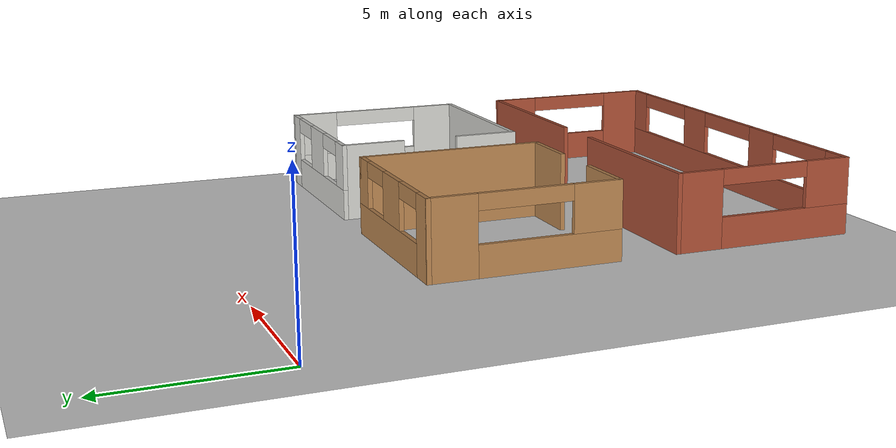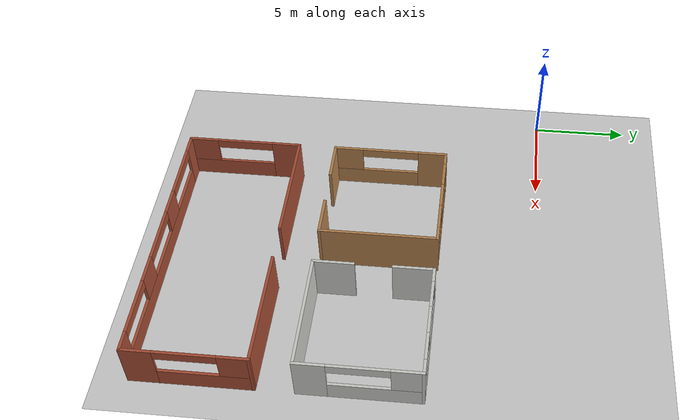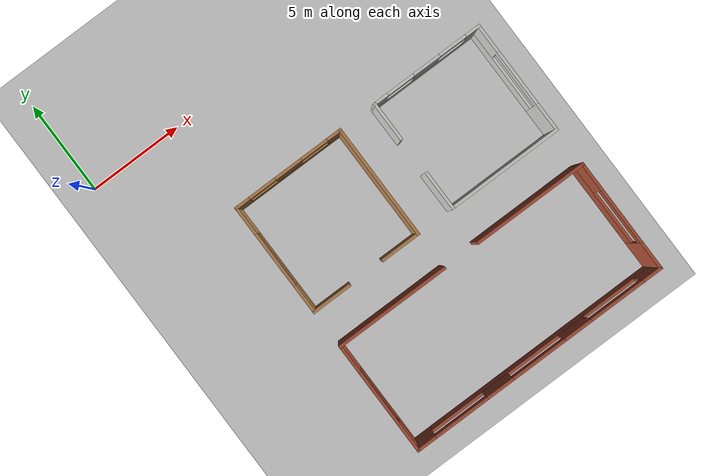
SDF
<sdf version="1.6">
 <world name="default">
  <light name="sun" type="directional">
   <pose>0 0 10 0 -0 0</pose>
   <diffuse>0.8 0.8 0.8 1</diffuse>
   <specular>0.2 0.2 0.2 1</specular>
   <attenuation>
    <range>1000</range>
    <constant>0.9</constant>
    <linear>0.01</linear>
    <quadratic>0.001</quadratic>
   </attenuation>
   <direction>-0.5 0.1 -0.9</direction>
  </light>
  <model name="ground_plane">
   <static>1</static>
   <link name="link">
    <collision name="collision">
     <geometry><plane><normal>0 0 1</normal><size>100 100</size></plane></geometry>
     <surface>
      <contact><collide_bitmask>65535</collide_bitmask></contact>
      <friction><ode><mu>100</mu><mu2>50</mu2></ode></friction>
     </surface>
    </collision>
    <visual name="visual">
     <cast_shadows>0</cast_shadows>
     <geometry><plane><normal>0 0 1</normal><size>100 100</size></plane></geometry>
     <material>
      <script><uri>file://media/materials/scripts/gazebo.material</uri><name>Gazebo/Grey</name></script>
     </material>
    </visual>
   </link>
  </model>
  <gravity>0 0 -9.8</gravity>
  <magnetic_field>6e-06 2.3e-05 -4.2e-05</magnetic_field>
  <atmosphere type="adiabatic"/>
  <physics name="default_physics" default="0" type="ode">
   <max_step_size>0.001</max_step_size>
   <real_time_factor>1</real_time_factor>
   <real_time_update_rate>1000</real_time_update_rate>
  </physics>
  <scene><ambient>0.4 0.4 0.4 1</ambient><background>0.7 0.7 0.7 1</background><shadows>1</shadows></scene>
  <spherical_coordinates>
   <surface_model>EARTH_WGS84</surface_model>
   <latitude_deg>0</latitude_deg>
   <longitude_deg>0</longitude_deg>
   <elevation>0</elevation>
   <heading_deg>0</heading_deg>
  </spherical_coordinates>
  <model name="planning_project_big">
   <pose>12.0748 -12.0654 0 0 -0 0</pose>
   <link name="Wall_0">
    <pose>-4 7 0 0 -0 0</pose>
    <visual name="Wall_0_Visual_0">
     <pose>-2.6625 0 1.25 0 -0 0</pose>
     <geometry><box><size>0.825 0.15 2.5</size></box></geometry>
     <material>
      <script><uri>file://media/materials/scripts/gazebo.material</uri><name>Gazebo/Wood</name></script>
      <ambient>1 1 1 1</ambient>
     </material>
    </visual>
    <collision name="Wall_0_Collision_0">
     <geometry><box><size>0.825 0.15 2.5</size></box></geometry>
     <pose>-2.6625 0 1.25 0 -0 0</pose>
    </collision>
    <visual name="Wall_0_Visual_1">
     <pose>0.4125 0 0.5 0 -0 0</pose>
     <geometry><box><size>5.325 0.15 1</size></box></geometry>
     <material>
      <script><uri>file://media/materials/scripts/gazebo.material</uri><name>Gazebo/Wood</name></script>
      <ambient>1 1 1 1</ambient>
     </material>
    </visual>
    <collision name="Wall_0_Collision_1">
     <geometry><box><size>5.325 0.15 1</size></box></geometry>
     <pose>0.4125 0 0.5 0 -0 0</pose>
    </collision>
    <visual name="Wall_0_Visual_2">
     <pose>0 0 1.75 0 -0 0</pose>
     <geometry><box><size>1.5 0.15 1.5</size></box></geometry>
     <material>
      <script><uri>file://media/materials/scripts/gazebo.material</uri><name>Gazebo/Wood</name></script>
      <ambient>1 1 1 1</ambient>
     </material>
    </visual>
    <collision name="Wall_0_Collision_2">
     <geometry><box><size>1.5 0.15 1.5</size></box></geometry>
     <pose>0 0 1.75 0 -0 0</pose>
    </collision>
    <visual name="Wall_0_Visual_3">
     <pose>2.6625 0 1.75 0 -0 0</pose>
     <geometry><box><size>0.825 0.15 1.5</size></box></geometry>
     <material>
      <script><uri>file://media/materials/scripts/gazebo.material</uri><name>Gazebo/Wood</name></script>
      <ambient>1 1 1 1</ambient>
     </material>
    </visual>
    <collision name="Wall_0_Collision_3">
     <geometry><box><size>0.825 0.15 1.5</size></box></geometry>
     <pose>2.6625 0 1.75 0 -0 0</pose>
    </collision>
    <visual name="Wall_0_Visual_4">
     <pose>-1.5 0 2.25 0 -0 0</pose>
     <geometry><box><size>1.5 0.15 0.5</size></box></geometry>
     <material>
      <script><uri>file://media/materials/scripts/gazebo.material</uri><name>Gazebo/Wood</name></script>
      <ambient>1 1 1 1</ambient>
     </material>
    </visual>
    <collision name="Wall_0_Collision_4">
     <geometry><box><size>1.5 0.15 0.5</size></box></geometry>
     <pose>-1.5 0 2.25 0 -0 0</pose>
    </collision>
    <visual name="Wall_0_Visual_5">
     <pose>1.5 0 2.25 0 -0 0</pose>
     <geometry><box><size>1.5 0.15 0.5</size></box></geometry>
     <material>
      <script><uri>file://media/materials/scripts/gazebo.material</uri><name>Gazebo/Wood</name></script>
      <ambient>1 1 1 1</ambient>
     </material>
    </visual>
    <collision name="Wall_0_Collision_5">
     <geometry><box><size>1.5 0.15 0.5</size></box></geometry>
     <pose>1.5 0 2.25 0 -0 0</pose>
    </collision>
   </link>
   <link name="Wall_1">
    <collision name="Wall_1_Collision">
     <geometry><box><size>6.15 0.15 2.5</size></box></geometry>
     <pose>0 0 1.25 0 -0 0</pose>
    </collision>
    <visual name="Wall_1_Visual">
     <pose>0 0 1.25 0 -0 0</pose>
     <geometry><box><size>6.15 0.15 2.5</size></box></geometry>
     <material>
      <script><uri>file://media/materials/scripts/gazebo.material</uri><name>Gazebo/Wood</name></script>
      <ambient>1 1 1 1</ambient>
     </material>
    </visual>
    <pose>-1 4 0 0 0 -1.5708</pose>
   </link>
   <link name="Wall_10">
    <pose>4 7 0 0 -0 3.14159</pose>
    <visual name="Wall_10_Visual_0">
     <pose>-2.6625 0 1.25 0 -0 0</pose>
     <geometry><box><size>0.825 0.15 2.5</size></box></geometry>
     <material>
      <script><uri>file://media/materials/scripts/gazebo.material</uri><name>Gazebo/CeilingTiled</name></script>
      <ambient>1 1 1 1</ambient>
     </material>
    </visual>
    <collision name="Wall_10_Collision_0">
     <geometry><box><size>0.825 0.15 2.5</size></box></geometry>
     <pose>-2.6625 0 1.25 0 -0 0</pose>
    </collision>
    <visual name="Wall_10_Visual_1">
     <pose>0.4125 0 0.5 0 -0 0</pose>
     <geometry><box><size>5.325 0.15 1</size></box></geometry>
     <material>
      <script><uri>file://media/materials/scripts/gazebo.material</uri><name>Gazebo/CeilingTiled</name></script>
      <ambient>1 1 1 1</ambient>
     </material>
    </visual>
    <collision name="Wall_10_Collision_1">
     <geometry><box><size>5.325 0.15 1</size></box></geometry>
     <pose>0.4125 0 0.5 0 -0 0</pose>
    </collision>
    <visual name="Wall_10_Visual_2">
     <pose>0 0 1.75 0 -0 0</pose>
     <geometry><box><size>1.5 0.15 1.5</size></box></geometry>
     <material>
      <script><uri>file://media/materials/scripts/gazebo.material</uri><name>Gazebo/CeilingTiled</name></script>
      <ambient>1 1 1 1</ambient>
     </material>
    </visual>
    <collision name="Wall_10_Collision_2">
     <geometry><box><size>1.5 0.15 1.5</size></box></geometry>
     <pose>0 0 1.75 0 -0 0</pose>
    </collision>
    <visual name="Wall_10_Visual_3">
     <pose>2.6625 0 1.75 0 -0 0</pose>
     <geometry><box><size>0.825 0.15 1.5</size></box></geometry>
     <material>
      <script><uri>file://media/materials/scripts/gazebo.material</uri><name>Gazebo/CeilingTiled</name></script>
      <ambient>1 1 1 1</ambient>
     </material>
    </visual>
    <collision name="Wall_10_Collision_3">
     <geometry><box><size>0.825 0.15 1.5</size></box></geometry>
     <pose>2.6625 0 1.75 0 -0 0</pose>
    </collision>
    <visual name="Wall_10_Visual_4">
     <pose>-1.5 0 2.25 0 -0 0</pose>
     <geometry><box><size>1.5 0.15 0.5</size></box></geometry>
     <material>
      <script><uri>file://media/materials/scripts/gazebo.material</uri><name>Gazebo/CeilingTiled</name></script>
      <ambient>1 1 1 1</ambient>
     </material>
    </visual>
    <collision name="Wall_10_Collision_4">
     <geometry><box><size>1.5 0.15 0.5</size></box></geometry>
     <pose>-1.5 0 2.25 0 -0 0</pose>
    </collision>
    <visual name="Wall_10_Visual_5">
     <pose>1.5 0 2.25 0 -0 0</pose>
     <geometry><box><size>1.5 0.15 0.5</size></box></geometry>
     <material>
      <script><uri>file://media/materials/scripts/gazebo.material</uri><name>Gazebo/CeilingTiled</name></script>
      <ambient>1 1 1 1</ambient>
     </material>
    </visual>
    <collision name="Wall_10_Collision_5">
     <geometry><box><size>1.5 0.15 0.5</size></box></geometry>
     <pose>1.5 0 2.25 0 -0 0</pose>
    </collision>
   </link>
   <link name="Wall_11">
    <collision name="Wall_11_Collision">
     <geometry><box><size>2.15 0.15 2.5</size></box></geometry>
     <pose>0 0 1.25 0 -0 0</pose>
    </collision>
    <visual name="Wall_11_Visual">
     <pose>0 0 1.25 0 -0 0</pose>
     <geometry><box><size>2.15 0.15 2.5</size></box></geometry>
     <material>
      <script><uri>file://media/materials/scripts/gazebo.material</uri><name>Gazebo/CeilingTiled</name></script>
      <ambient>1 1 1 1</ambient>
     </material>
    </visual>
    <pose>1 6 0 0 0 -1.5708</pose>
   </link>
   <link name="Wall_13">
    <collision name="Wall_13_Collision">
     <geometry><box><size>6.15 0.15 2.5</size></box></geometry>
     <pose>0 0 1.25 0 -0 0</pose>
    </collision>
    <visual name="Wall_13_Visual">
     <pose>0 0 1.25 0 -0 0</pose>
     <geometry><box><size>6.15 0.15 2.5</size></box></geometry>
     <material>
      <script><uri>file://media/materials/scripts/gazebo.material</uri><name>Gazebo/Bricks</name></script>
      <ambient>1 1 1 1</ambient>
     </material>
    </visual>
    <pose>-4 -1 0 0 -0 3.14159</pose>
   </link>
   <link name="Wall_14">
    <pose>-7 -4 0 0 0 -1.5708</pose>
    <visual name="Wall_14_Visual_0">
     <pose>-2.2875 0 1.25 0 -0 0</pose>
     <geometry><box><size>1.575 0.15 2.5</size></box></geometry>
     <material>
      <script><uri>file://media/materials/scripts/gazebo.material</uri><name>Gazebo/Bricks</name></script>
      <ambient>1 1 1 1</ambient>
     </material>
    </visual>
    <collision name="Wall_14_Collision_0">
     <geometry><box><size>1.575 0.15 2.5</size></box></geometry>
     <pose>-2.2875 0 1.25 0 -0 0</pose>
    </collision>
    <visual name="Wall_14_Visual_1">
     <pose>0.7875 0 0.5 0 -0 0</pose>
     <geometry><box><size>4.575 0.15 1</size></box></geometry>
     <material>
      <script><uri>file://media/materials/scripts/gazebo.material</uri><name>Gazebo/Bricks</name></script>
      <ambient>1 1 1 1</ambient>
     </material>
    </visual>
    <collision name="Wall_14_Collision_1">
     <geometry><box><size>4.575 0.15 1</size></box></geometry>
     <pose>0.7875 0 0.5 0 -0 0</pose>
    </collision>
    <visual name="Wall_14_Visual_2">
     <pose>2.2875 0 1.75 0 -0 0</pose>
     <geometry><box><size>1.575 0.15 1.5</size></box></geometry>
     <material>
      <script><uri>file://media/materials/scripts/gazebo.material</uri><name>Gazebo/Bricks</name></script>
      <ambient>1 1 1 1</ambient>
     </material>
    </visual>
    <collision name="Wall_14_Collision_2">
     <geometry><box><size>1.575 0.15 1.5</size></box></geometry>
     <pose>2.2875 0 1.75 0 -0 0</pose>
    </collision>
    <visual name="Wall_14_Visual_3">
     <pose>0 0 2.25 0 -0 0</pose>
     <geometry><box><size>3 0.15 0.5</size></box></geometry>
     <material>
      <script><uri>file://media/materials/scripts/gazebo.material</uri><name>Gazebo/Bricks</name></script>
      <ambient>1 1 1 1</ambient>
     </material>
    </visual>
    <collision name="Wall_14_Collision_3">
     <geometry><box><size>3 0.15 0.5</size></box></geometry>
     <pose>0 0 2.25 0 -0 0</pose>
    </collision>
   </link>
   <link name="Wall_15">
    <pose>0 -7 0 0 -0 0</pose>
    <visual name="Wall_15_Visual_0">
     <pose>-6.5375 0 1.25 0 -0 0</pose>
     <geometry><box><size>1.075 0.15 2.5</size></box></geometry>
     <material>
      <script><uri>file://media/materials/scripts/gazebo.material</uri><name>Gazebo/Bricks</name></script>
      <ambient>1 1 1 1</ambient>
     </material>
    </visual>
    <collision name="Wall_15_Collision_0">
     <geometry><box><size>1.075 0.15 2.5</size></box></geometry>
     <pose>-6.5375 0 1.25 0 -0 0</pose>
    </collision>
    <visual name="Wall_15_Visual_1">
     <pose>0.5375 0 0.5 0 -0 0</pose>
     <geometry><box><size>13.075 0.15 1</size></box></geometry>
     <material>
      <script><uri>file://media/materials/scripts/gazebo.material</uri><name>Gazebo/Bricks</name></script>
      <ambient>1 1 1 1</ambient>
     </material>
    </visual>
    <collision name="Wall_15_Collision_1">
     <geometry><box><size>13.075 0.15 1</size></box></geometry>
     <pose>0.5375 0 0.5 0 -0 0</pose>
    </collision>
    <visual name="Wall_15_Visual_2">
     <pose>-2.25 0 1.75 0 -0 0</pose>
     <geometry><box><size>1.5 0.15 1.5</size></box></geometry>
     <material>
      <script><uri>file://media/materials/scripts/gazebo.material</uri><name>Gazebo/Bricks</name></script>
      <ambient>1 1 1 1</ambient>
     </material>
    </visual>
    <collision name="Wall_15_Collision_2">
     <geometry><box><size>1.5 0.15 1.5</size></box></geometry>
     <pose>-2.25 0 1.75 0 -0 0</pose>
    </collision>
    <visual name="Wall_15_Visual_3">
     <pose>2.25 0 1.75 0 -0 0</pose>
     <geometry><box><size>1.5 0.15 1.5</size></box></geometry>
     <material>
      <script><uri>file://media/materials/scripts/gazebo.material</uri><name>Gazebo/Bricks</name></script>
      <ambient>1 1 1 1</ambient>
     </material>
    </visual>
    <collision name="Wall_15_Collision_3">
     <geometry><box><size>1.5 0.15 1.5</size></box></geometry>
     <pose>2.25 0 1.75 0 -0 0</pose>
    </collision>
    <visual name="Wall_15_Visual_4">
     <pose>6.5375 0 1.75 0 -0 0</pose>
     <geometry><box><size>1.075 0.15 1.5</size></box></geometry>
     <material>
      <script><uri>file://media/materials/scripts/gazebo.material</uri><name>Gazebo/Bricks</name></script>
      <ambient>1 1 1 1</ambient>
     </material>
    </visual>
    <collision name="Wall_15_Collision_4">
     <geometry><box><size>1.075 0.15 1.5</size></box></geometry>
     <pose>6.5375 0 1.75 0 -0 0</pose>
    </collision>
    <visual name="Wall_15_Visual_5">
     <pose>-4.5 0 2.25 0 -0 0</pose>
     <geometry><box><size>3 0.15 0.5</size></box></geometry>
     <material>
      <script><uri>file://media/materials/scripts/gazebo.material</uri><name>Gazebo/Bricks</name></script>
      <ambient>1 1 1 1</ambient>
     </material>
    </visual>
    <collision name="Wall_15_Collision_5">
     <geometry><box><size>3 0.15 0.5</size></box></geometry>
     <pose>-4.5 0 2.25 0 -0 0</pose>
    </collision>
    <visual name="Wall_15_Visual_6">
     <pose>-0 0 2.25 0 -0 0</pose>
     <geometry><box><size>3 0.15 0.5</size></box></geometry>
     <material>
      <script><uri>file://media/materials/scripts/gazebo.material</uri><name>Gazebo/Bricks</name></script>
      <ambient>1 1 1 1</ambient>
     </material>
    </visual>
    <collision name="Wall_15_Collision_6">
     <geometry><box><size>3 0.15 0.5</size></box></geometry>
     <pose>-0 0 2.25 0 -0 0</pose>
    </collision>
    <visual name="Wall_15_Visual_7">
     <pose>4.5 0 2.25 0 -0 0</pose>
     <geometry><box><size>3 0.15 0.5</size></box></geometry>
     <material>
      <script><uri>file://media/materials/scripts/gazebo.material</uri><name>Gazebo/Bricks</name></script>
      <ambient>1 1 1 1</ambient>
     </material>
    </visual>
    <collision name="Wall_15_Collision_7">
     <geometry><box><size>3 0.15 0.5</size></box></geometry>
     <pose>4.5 0 2.25 0 -0 0</pose>
    </collision>
   </link>
   <link name="Wall_16">
    <pose>7 -4 0 0 -0 1.5708</pose>
    <visual name="Wall_16_Visual_0">
     <pose>-2.2875 0 1.25 0 -0 0</pose>
     <geometry><box><size>1.575 0.15 2.5</size></box></geometry>
     <material>
      <script><uri>file://media/materials/scripts/gazebo.material</uri><name>Gazebo/Bricks</name></script>
      <ambient>1 1 1 1</ambient>
     </material>
    </visual>
    <collision name="Wall_16_Collision_0">
     <geometry><box><size>1.575 0.15 2.5</size></box></geometry>
     <pose>-2.2875 0 1.25 0 -0 0</pose>
    </collision>
    <visual name="Wall_16_Visual_1">
     <pose>0.7875 0 0.5 0 -0 0</pose>
     <geometry><box><size>4.575 0.15 1</size></box></geometry>
     <material>
      <script><uri>file://media/materials/scripts/gazebo.material</uri><name>Gazebo/Bricks</name></script>
      <ambient>1 1 1 1</ambient>
     </material>
    </visual>
    <collision name="Wall_16_Collision_1">
     <geometry><box><size>4.575 0.15 1</size></box></geometry>
     <pose>0.7875 0 0.5 0 -0 0</pose>
    </collision>
    <visual name="Wall_16_Visual_2">
     <pose>2.2875 0 1.75 0 -0 0</pose>
     <geometry><box><size>1.575 0.15 1.5</size></box></geometry>
     <material>
      <script><uri>file://media/materials/scripts/gazebo.material</uri><name>Gazebo/Bricks</name></script>
      <ambient>1 1 1 1</ambient>
     </material>
    </visual>
    <collision name="Wall_16_Collision_2">
     <geometry><box><size>1.575 0.15 1.5</size></box></geometry>
     <pose>2.2875 0 1.75 0 -0 0</pose>
    </collision>
    <visual name="Wall_16_Visual_3">
     <pose>0 0 2.25 0 -0 0</pose>
     <geometry><box><size>3 0.15 0.5</size></box></geometry>
     <material>
      <script><uri>file://media/materials/scripts/gazebo.material</uri><name>Gazebo/Bricks</name></script>
      <ambient>1 1 1 1</ambient>
     </material>
    </visual>
    <collision name="Wall_16_Collision_3">
     <geometry><box><size>3 0.15 0.5</size></box></geometry>
     <pose>0 0 2.25 0 -0 0</pose>
    </collision>
   </link>
   <link name="Wall_17">
    <collision name="Wall_17_Collision">
     <geometry><box><size>6.15 0.15 2.5</size></box></geometry>
     <pose>0 0 1.25 0 -0 0</pose>
    </collision>
    <visual name="Wall_17_Visual">
     <pose>0 0 1.25 0 -0 0</pose>
     <geometry><box><size>6.15 0.15 2.5</size></box></geometry>
     <material>
      <script><uri>file://media/materials/scripts/gazebo.material</uri><name>Gazebo/Bricks</name></script>
      <ambient>1 1 1 1</ambient>
     </material>
    </visual>
    <pose>4 -1 0 0 -0 3.14159</pose>
   </link>
   <link name="Wall_2">
    <collision name="Wall_2_Collision">
     <geometry><box><size>2.15 0.15 2.5</size></box></geometry>
     <pose>0 0 1.25 0 -0 0</pose>
    </collision>
    <visual name="Wall_2_Visual">
     <pose>0 0 1.25 0 -0 0</pose>
     <geometry><box><size>2.15 0.15 2.5</size></box></geometry>
     <material>
      <script><uri>file://media/materials/scripts/gazebo.material</uri><name>Gazebo/Wood</name></script>
      <ambient>1 1 1 1</ambient>
     </material>
    </visual>
    <pose>-2 1 0 0 -0 3.14159</pose>
   </link>
   <link name="Wall_4">
    <pose>-7 4 0 0 0 -1.5708</pose>
    <visual name="Wall_4_Visual_0">
     <pose>-2.2875 0 1.25 0 -0 0</pose>
     <geometry><box><size>1.575 0.15 2.5</size></box></geometry>
     <material>
      <script><uri>file://media/materials/scripts/gazebo.material</uri><name>Gazebo/Wood</name></script>
      <ambient>1 1 1 1</ambient>
     </material>
    </visual>
    <collision name="Wall_4_Collision_0">
     <geometry><box><size>1.575 0.15 2.5</size></box></geometry>
     <pose>-2.2875 0 1.25 0 -0 0</pose>
    </collision>
    <visual name="Wall_4_Visual_1">
     <pose>0.7875 0 0.5 0 -0 0</pose>
     <geometry><box><size>4.575 0.15 1</size></box></geometry>
     <material>
      <script><uri>file://media/materials/scripts/gazebo.material</uri><name>Gazebo/Wood</name></script>
      <ambient>1 1 1 1</ambient>
     </material>
    </visual>
    <collision name="Wall_4_Collision_1">
     <geometry><box><size>4.575 0.15 1</size></box></geometry>
     <pose>0.7875 0 0.5 0 -0 0</pose>
    </collision>
    <visual name="Wall_4_Visual_2">
     <pose>2.2875 0 1.75 0 -0 0</pose>
     <geometry><box><size>1.575 0.15 1.5</size></box></geometry>
     <material>
      <script><uri>file://media/materials/scripts/gazebo.material</uri><name>Gazebo/Wood</name></script>
      <ambient>1 1 1 1</ambient>
     </material>
    </visual>
    <collision name="Wall_4_Collision_2">
     <geometry><box><size>1.575 0.15 1.5</size></box></geometry>
     <pose>2.2875 0 1.75 0 -0 0</pose>
    </collision>
    <visual name="Wall_4_Visual_3">
     <pose>0 0 2.25 0 -0 0</pose>
     <geometry><box><size>3 0.15 0.5</size></box></geometry>
     <material>
      <script><uri>file://media/materials/scripts/gazebo.material</uri><name>Gazebo/Wood</name></script>
      <ambient>1 1 1 1</ambient>
     </material>
    </visual>
    <collision name="Wall_4_Collision_3">
     <geometry><box><size>3 0.15 0.5</size></box></geometry>
     <pose>0 0 2.25 0 -0 0</pose>
    </collision>
   </link>
   <link name="Wall_5">
    <collision name="Wall_5_Collision">
     <geometry><box><size>2.15 0.15 2.5</size></box></geometry>
     <pose>0 0 1.25 0 -0 0</pose>
    </collision>
    <visual name="Wall_5_Visual">
     <pose>0 0 1.25 0 -0 0</pose>
     <geometry><box><size>2.15 0.15 2.5</size></box></geometry>
     <material>
      <script><uri>file://media/materials/scripts/gazebo.material</uri><name>Gazebo/Wood</name></script>
      <ambient>1 1 1 1</ambient>
     </material>
    </visual>
    <pose>-6 1 0 0 -0 0</pose>
   </link>
   <link name="Wall_7">
    <collision name="Wall_7_Collision">
     <geometry><box><size>2.15 0.15 2.5</size></box></geometry>
     <pose>0 0 1.25 0 -0 0</pose>
    </collision>
    <visual name="Wall_7_Visual">
     <pose>0 0 1.25 0 -0 0</pose>
     <geometry><box><size>2.15 0.15 2.5</size></box></geometry>
     <material>
      <script><uri>file://media/materials/scripts/gazebo.material</uri><name>Gazebo/CeilingTiled</name></script>
      <ambient>1 1 1 1</ambient>
     </material>
    </visual>
    <pose>1 2 0 0 0 -1.5708</pose>
   </link>
   <link name="Wall_8">
    <collision name="Wall_8_Collision">
     <geometry><box><size>6.15 0.15 2.5</size></box></geometry>
     <pose>0 0 1.25 0 -0 0</pose>
    </collision>
    <visual name="Wall_8_Visual">
     <pose>0 0 1.25 0 -0 0</pose>
     <geometry><box><size>6.15 0.15 2.5</size></box></geometry>
     <material>
      <script><uri>file://media/materials/scripts/gazebo.material</uri><name>Gazebo/CeilingTiled</name></script>
      <ambient>1 1 1 1</ambient>
     </material>
    </visual>
    <pose>4 1 0 0 -0 0</pose>
   </link>
   <link name="Wall_9">
    <pose>7 4 0 0 -0 1.5708</pose>
    <visual name="Wall_9_Visual_0">
     <pose>-2.2875 0 1.25 0 -0 0</pose>
     <geometry><box><size>1.575 0.15 2.5</size></box></geometry>
     <material>
      <script><uri>file://media/materials/scripts/gazebo.material</uri><name>Gazebo/CeilingTiled</name></script>
      <ambient>1 1 1 1</ambient>
     </material>
    </visual>
    <collision name="Wall_9_Collision_0">
     <geometry><box><size>1.575 0.15 2.5</size></box></geometry>
     <pose>-2.2875 0 1.25 0 -0 0</pose>
    </collision>
    <visual name="Wall_9_Visual_1">
     <pose>0.7875 0 0.5 0 -0 0</pose>
     <geometry><box><size>4.575 0.15 1</size></box></geometry>
     <material>
      <script><uri>file://media/materials/scripts/gazebo.material</uri><name>Gazebo/CeilingTiled</name></script>
      <ambient>1 1 1 1</ambient>
     </material>
    </visual>
    <collision name="Wall_9_Collision_1">
     <geometry><box><size>4.575 0.15 1</size></box></geometry>
     <pose>0.7875 0 0.5 0 -0 0</pose>
    </collision>
    <visual name="Wall_9_Visual_2">
     <pose>2.2875 0 1.75 0 -0 0</pose>
     <geometry><box><size>1.575 0.15 1.5</size></box></geometry>
     <material>
      <script><uri>file://media/materials/scripts/gazebo.material</uri><name>Gazebo/CeilingTiled</name></script>
      <ambient>1 1 1 1</ambient>
     </material>
    </visual>
    <collision name="Wall_9_Collision_2">
     <geometry><box><size>1.575 0.15 1.5</size></box></geometry>
     <pose>2.2875 0 1.75 0 -0 0</pose>
    </collision>
    <visual name="Wall_9_Visual_3">
     <pose>0 0 2.25 0 -0 0</pose>
     <geometry><box><size>3 0.15 0.5</size></box></geometry>
     <material>
      <script><uri>file://media/materials/scripts/gazebo.material</uri><name>Gazebo/CeilingTiled</name></script>
      <ambient>1 1 1 1</ambient>
     </material>
    </visual>
    <collision name="Wall_9_Collision_3">
     <geometry><box><size>3 0.15 0.5</size></box></geometry>
     <pose>0 0 2.25 0 -0 0</pose>
    </collision>
   </link>
   <static>1</static>
  </model>
 </world>
</sdf>
